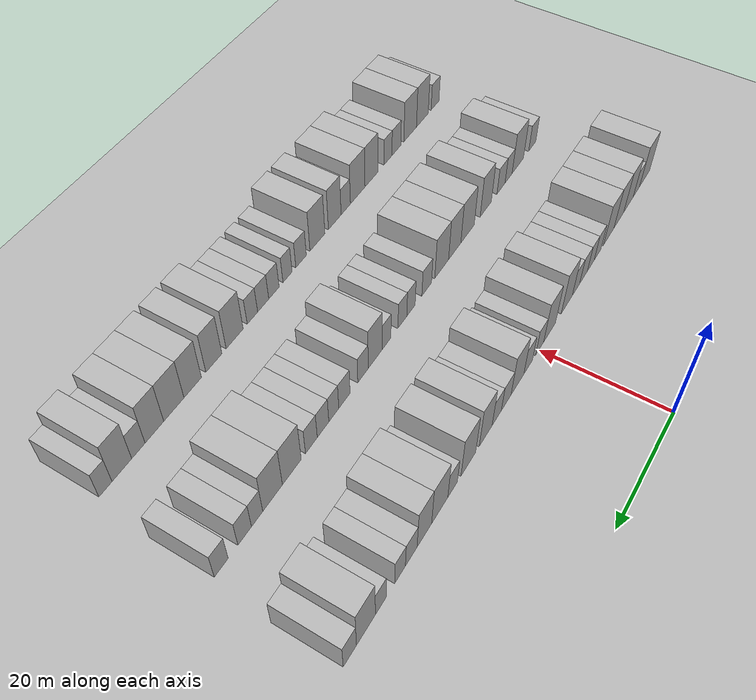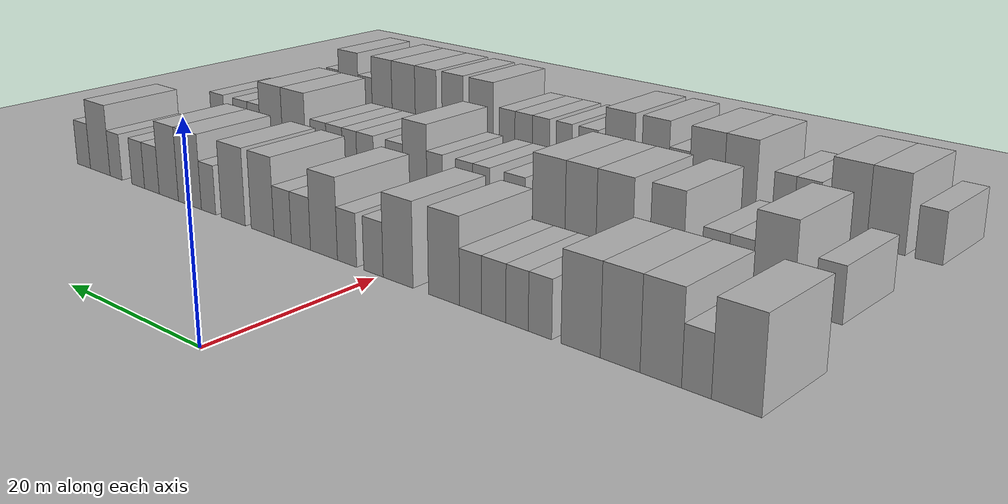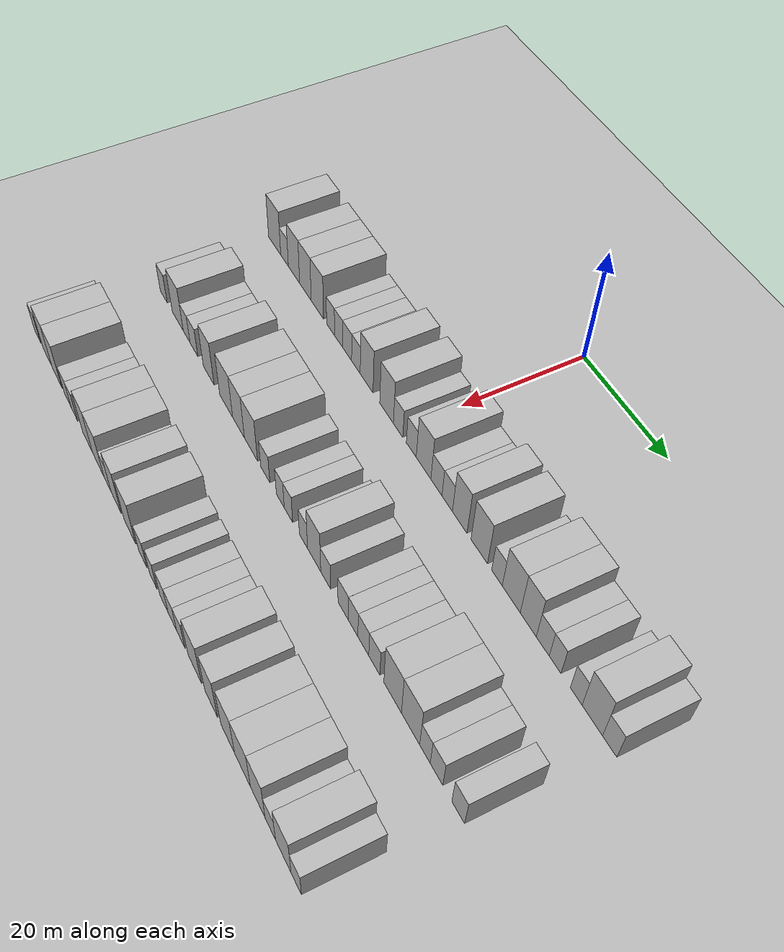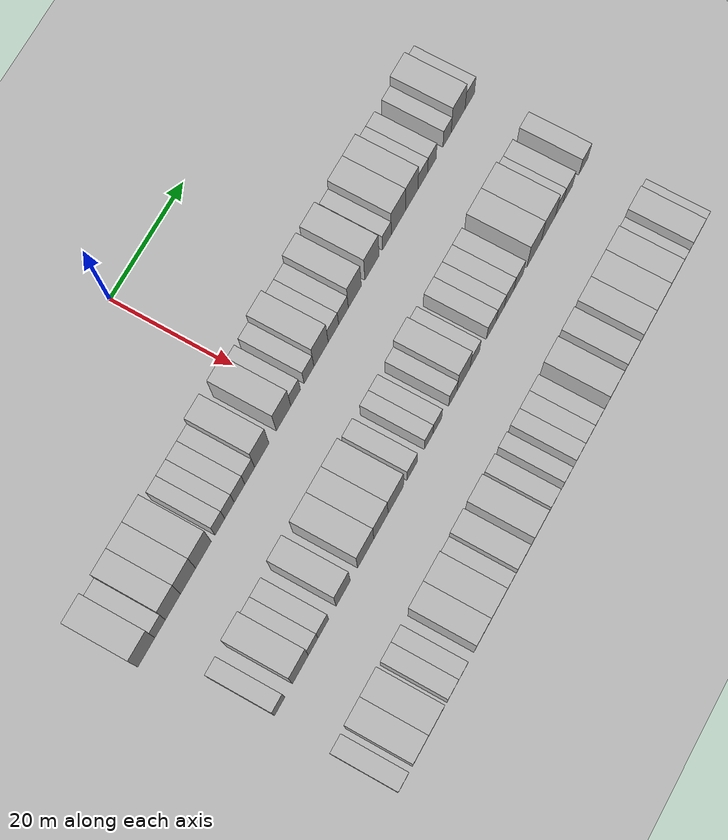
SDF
<sdf version="1.6">
 <world name="default">
  <include><name>ground_plane_1</name><uri>model://HANNAS_ground_plane</uri></include>
  <include>
   <name>ground_plane_2</name>
   <uri>model://HANNAS_ground_plane</uri>
   <pose>100 0 0  0 0 0</pose>
  </include>
  <model name="building_48">
   <static>1</static>
   <pose>25.0000 -39.6788 0 0.000000 0.000000 0.000000</pose>
   <link name="link">
    <pose>0 0 4.50 0 0 0</pose>
    <collision name="collision"><geometry><box><size>10.0000 4.4031 9.0000</size></box></geometry></collision>
    <visual name="visual">
     <cast_shadows>0</cast_shadows>
     <geometry><box><size>10.0000 4.4031 9.0000</size></box></geometry>
     <material>
      <script>
       <uri>model://HANNAS_wall/materials/scripts</uri>
       <uri>model://HANNAS_wall/materials/textures</uri>
       <name>vrc/HANNAS_wall</name>
      </script>
     </material>
    </visual>
   </link>
  </model>
  <model name="building_49">
   <static>1</static>
   <pose>25.0000 -36.1139 0 0.000000 0.000000 0.000000</pose>
   <link name="link">
    <pose>0 0 3.00 0 0 0</pose>
    <collision name="collision"><geometry><box><size>10.0000 2.7268 6.0000</size></box></geometry></collision>
    <visual name="visual">
     <cast_shadows>0</cast_shadows>
     <geometry><box><size>10.0000 2.7268 6.0000</size></box></geometry>
     <material>
      <script>
       <uri>model://HANNAS_wall/materials/scripts</uri>
       <uri>model://HANNAS_wall/materials/textures</uri>
       <name>vrc/HANNAS_wall</name>
      </script>
     </material>
    </visual>
   </link>
  </model>
  <model name="building_50">
   <static>1</static>
   <pose>25.0000 -32.7789 0 0.000000 0.000000 0.000000</pose>
   <link name="link">
    <pose>0 0 4.50 0 0 0</pose>
    <collision name="collision"><geometry><box><size>10.0000 3.9430 9.0000</size></box></geometry></collision>
    <visual name="visual">
     <cast_shadows>0</cast_shadows>
     <geometry><box><size>10.0000 3.9430 9.0000</size></box></geometry>
     <material>
      <script>
       <uri>model://HANNAS_wall/materials/scripts</uri>
       <uri>model://HANNAS_wall/materials/textures</uri>
       <name>vrc/HANNAS_wall</name>
      </script>
     </material>
    </visual>
   </link>
  </model>
  <model name="building_51">
   <static>1</static>
   <pose>25.0000 -28.8293 0 0.000000 0.000000 0.000000</pose>
   <link name="link">
    <pose>0 0 4.50 0 0 0</pose>
    <collision name="collision"><geometry><box><size>10.0000 3.9562 9.0000</size></box></geometry></collision>
    <visual name="visual">
     <cast_shadows>0</cast_shadows>
     <geometry><box><size>10.0000 3.9562 9.0000</size></box></geometry>
     <material>
      <script>
       <uri>model://HANNAS_wall/materials/scripts</uri>
       <uri>model://HANNAS_wall/materials/textures</uri>
       <name>vrc/HANNAS_wall</name>
      </script>
     </material>
    </visual>
   </link>
  </model>
  <model name="building_52">
   <static>1</static>
   <pose>25.0000 -24.7920 0 0.000000 0.000000 0.000000</pose>
   <link name="link">
    <pose>0 0 4.50 0 0 0</pose>
    <collision name="collision"><geometry><box><size>10.0000 4.1183 9.0000</size></box></geometry></collision>
    <visual name="visual">
     <cast_shadows>0</cast_shadows>
     <geometry><box><size>10.0000 4.1183 9.0000</size></box></geometry>
     <material>
      <script>
       <uri>model://HANNAS_wall/materials/scripts</uri>
       <uri>model://HANNAS_wall/materials/textures</uri>
       <name>vrc/HANNAS_wall</name>
      </script>
     </material>
    </visual>
   </link>
  </model>
  <model name="building_53">
   <static>1</static>
   <pose>25.0000 -20.4421 0 0.000000 0.000000 0.000000</pose>
   <link name="link">
    <pose>0 0 3.00 0 0 0</pose>
    <collision name="collision"><geometry><box><size>10.0000 2.5815 6.0000</size></box></geometry></collision>
    <visual name="visual">
     <cast_shadows>0</cast_shadows>
     <geometry><box><size>10.0000 2.5815 6.0000</size></box></geometry>
     <material>
      <script>
       <uri>model://HANNAS_wall/materials/scripts</uri>
       <uri>model://HANNAS_wall/materials/textures</uri>
       <name>vrc/HANNAS_wall</name>
      </script>
     </material>
    </visual>
   </link>
  </model>
  <model name="building_54">
   <static>1</static>
   <pose>25.0000 -17.8780 0 0.000000 0.000000 0.000000</pose>
   <link name="link">
    <pose>0 0 3.00 0 0 0</pose>
    <collision name="collision"><geometry><box><size>10.0000 2.5468 6.0000</size></box></geometry></collision>
    <visual name="visual">
     <cast_shadows>0</cast_shadows>
     <geometry><box><size>10.0000 2.5468 6.0000</size></box></geometry>
     <material>
      <script>
       <uri>model://HANNAS_wall/materials/scripts</uri>
       <uri>model://HANNAS_wall/materials/textures</uri>
       <name>vrc/HANNAS_wall</name>
      </script>
     </material>
    </visual>
   </link>
  </model>
  <model name="building_55">
   <static>1</static>
   <pose>25.0000 -15.1746 0 0.000000 0.000000 0.000000</pose>
   <link name="link">
    <pose>0 0 3.00 0 0 0</pose>
    <collision name="collision"><geometry><box><size>10.0000 2.8601 6.0000</size></box></geometry></collision>
    <visual name="visual">
     <cast_shadows>0</cast_shadows>
     <geometry><box><size>10.0000 2.8601 6.0000</size></box></geometry>
     <material>
      <script>
       <uri>model://HANNAS_wall/materials/scripts</uri>
       <uri>model://HANNAS_wall/materials/textures</uri>
       <name>vrc/HANNAS_wall</name>
      </script>
     </material>
    </visual>
   </link>
  </model>
  <model name="building_56">
   <static>1</static>
   <pose>25.0000 -12.4205 0 0.000000 0.000000 0.000000</pose>
   <link name="link">
    <pose>0 0 3.00 0 0 0</pose>
    <collision name="collision"><geometry><box><size>10.0000 2.6481 6.0000</size></box></geometry></collision>
    <visual name="visual">
     <cast_shadows>0</cast_shadows>
     <geometry><box><size>10.0000 2.6481 6.0000</size></box></geometry>
     <material>
      <script>
       <uri>model://HANNAS_wall/materials/scripts</uri>
       <uri>model://HANNAS_wall/materials/textures</uri>
       <name>vrc/HANNAS_wall</name>
      </script>
     </material>
    </visual>
   </link>
  </model>
  <model name="building_57">
   <static>1</static>
   <pose>25.0000 -9.1543 0 0.000000 0.000000 0.000000</pose>
   <link name="link">
    <pose>0 0 4.50 0 0 0</pose>
    <collision name="collision"><geometry><box><size>10.0000 3.8844 9.0000</size></box></geometry></collision>
    <visual name="visual">
     <cast_shadows>0</cast_shadows>
     <geometry><box><size>10.0000 3.8844 9.0000</size></box></geometry>
     <material>
      <script>
       <uri>model://HANNAS_wall/materials/scripts</uri>
       <uri>model://HANNAS_wall/materials/textures</uri>
       <name>vrc/HANNAS_wall</name>
      </script>
     </material>
    </visual>
   </link>
  </model>
  <model name="building_58">
   <static>1</static>
   <pose>25.0000 -3.2167 0 0.000000 0.000000 0.000000</pose>
   <link name="link">
    <pose>0 0 4.50 0 0 0</pose>
    <collision name="collision"><geometry><box><size>10.0000 3.9907 9.0000</size></box></geometry></collision>
    <visual name="visual">
     <cast_shadows>0</cast_shadows>
     <geometry><box><size>10.0000 3.9907 9.0000</size></box></geometry>
     <material>
      <script>
       <uri>model://HANNAS_wall/materials/scripts</uri>
       <uri>model://HANNAS_wall/materials/textures</uri>
       <name>vrc/HANNAS_wall</name>
      </script>
     </material>
    </visual>
   </link>
  </model>
  <model name="building_59">
   <static>1</static>
   <pose>25.0000 0.1174 0 0.000000 0.000000 0.000000</pose>
   <link name="link">
    <pose>0 0 3.00 0 0 0</pose>
    <collision name="collision"><geometry><box><size>10.0000 2.6775 6.0000</size></box></geometry></collision>
    <visual name="visual">
     <cast_shadows>0</cast_shadows>
     <geometry><box><size>10.0000 2.6775 6.0000</size></box></geometry>
     <material>
      <script>
       <uri>model://HANNAS_wall/materials/scripts</uri>
       <uri>model://HANNAS_wall/materials/textures</uri>
       <name>vrc/HANNAS_wall</name>
      </script>
     </material>
    </visual>
   </link>
  </model>
  <model name="building_60">
   <static>1</static>
   <pose>25.0000 3.8342 0 0.000000 0.000000 0.000000</pose>
   <link name="link">
    <pose>0 0 3.00 0 0 0</pose>
    <collision name="collision"><geometry><box><size>10.0000 2.7561 6.0000</size></box></geometry></collision>
    <visual name="visual">
     <cast_shadows>0</cast_shadows>
     <geometry><box><size>10.0000 2.7561 6.0000</size></box></geometry>
     <material>
      <script>
       <uri>model://HANNAS_wall/materials/scripts</uri>
       <uri>model://HANNAS_wall/materials/textures</uri>
       <name>vrc/HANNAS_wall</name>
      </script>
     </material>
    </visual>
   </link>
  </model>
  <model name="building_61">
   <static>1</static>
   <pose>25.0000 7.2117 0 0.000000 0.000000 0.000000</pose>
   <link name="link">
    <pose>0 0 4.50 0 0 0</pose>
    <collision name="collision"><geometry><box><size>10.0000 3.9989 9.0000</size></box></geometry></collision>
    <visual name="visual">
     <cast_shadows>0</cast_shadows>
     <geometry><box><size>10.0000 3.9989 9.0000</size></box></geometry>
     <material>
      <script>
       <uri>model://HANNAS_wall/materials/scripts</uri>
       <uri>model://HANNAS_wall/materials/textures</uri>
       <name>vrc/HANNAS_wall</name>
      </script>
     </material>
    </visual>
   </link>
  </model>
  <model name="building_62">
   <static>1</static>
   <pose>25.0000 10.6851 0 0.000000 0.000000 0.000000</pose>
   <link name="link">
    <pose>0 0 3.00 0 0 0</pose>
    <collision name="collision"><geometry><box><size>10.0000 2.9478 6.0000</size></box></geometry></collision>
    <visual name="visual">
     <cast_shadows>0</cast_shadows>
     <geometry><box><size>10.0000 2.9478 6.0000</size></box></geometry>
     <material>
      <script>
       <uri>model://HANNAS_wall/materials/scripts</uri>
       <uri>model://HANNAS_wall/materials/textures</uri>
       <name>vrc/HANNAS_wall</name>
      </script>
     </material>
    </visual>
   </link>
  </model>
  <model name="building_63">
   <static>1</static>
   <pose>25.0000 13.5272 0 0.000000 0.000000 0.000000</pose>
   <link name="link">
    <pose>0 0 3.00 0 0 0</pose>
    <collision name="collision"><geometry><box><size>10.0000 2.7364 6.0000</size></box></geometry></collision>
    <visual name="visual">
     <cast_shadows>0</cast_shadows>
     <geometry><box><size>10.0000 2.7364 6.0000</size></box></geometry>
     <material>
      <script>
       <uri>model://HANNAS_wall/materials/scripts</uri>
       <uri>model://HANNAS_wall/materials/textures</uri>
       <name>vrc/HANNAS_wall</name>
      </script>
     </material>
    </visual>
   </link>
  </model>
  <model name="building_64">
   <static>1</static>
   <pose>25.0000 16.7561 0 0.000000 0.000000 0.000000</pose>
   <link name="link">
    <pose>0 0 4.50 0 0 0</pose>
    <collision name="collision"><geometry><box><size>10.0000 3.7214 9.0000</size></box></geometry></collision>
    <visual name="visual">
     <cast_shadows>0</cast_shadows>
     <geometry><box><size>10.0000 3.7214 9.0000</size></box></geometry>
     <material>
      <script>
       <uri>model://HANNAS_wall/materials/scripts</uri>
       <uri>model://HANNAS_wall/materials/textures</uri>
       <name>vrc/HANNAS_wall</name>
      </script>
     </material>
    </visual>
   </link>
  </model>
  <model name="building_65">
   <static>1</static>
   <pose>25.0000 21.6543 0 0.000000 0.000000 0.000000</pose>
   <link name="link">
    <pose>0 0 4.50 0 0 0</pose>
    <collision name="collision"><geometry><box><size>10.0000 4.0751 9.0000</size></box></geometry></collision>
    <visual name="visual">
     <cast_shadows>0</cast_shadows>
     <geometry><box><size>10.0000 4.0751 9.0000</size></box></geometry>
     <material>
      <script>
       <uri>model://HANNAS_wall/materials/scripts</uri>
       <uri>model://HANNAS_wall/materials/textures</uri>
       <name>vrc/HANNAS_wall</name>
      </script>
     </material>
    </visual>
   </link>
  </model>
  <model name="building_66">
   <static>1</static>
   <pose>25.0000 25.9667 0 0.000000 0.000000 0.000000</pose>
   <link name="link">
    <pose>0 0 3.00 0 0 0</pose>
    <collision name="collision"><geometry><box><size>10.0000 2.5496 6.0000</size></box></geometry></collision>
    <visual name="visual">
     <cast_shadows>0</cast_shadows>
     <geometry><box><size>10.0000 2.5496 6.0000</size></box></geometry>
     <material>
      <script>
       <uri>model://HANNAS_wall/materials/scripts</uri>
       <uri>model://HANNAS_wall/materials/textures</uri>
       <name>vrc/HANNAS_wall</name>
      </script>
     </material>
    </visual>
   </link>
  </model>
  <model name="building_67">
   <static>1</static>
   <pose>25.0000 29.3465 0 0.000000 0.000000 0.000000</pose>
   <link name="link">
    <pose>0 0 4.50 0 0 0</pose>
    <collision name="collision"><geometry><box><size>10.0000 4.2099 9.0000</size></box></geometry></collision>
    <visual name="visual">
     <cast_shadows>0</cast_shadows>
     <geometry><box><size>10.0000 4.2099 9.0000</size></box></geometry>
     <material>
      <script>
       <uri>model://HANNAS_wall/materials/scripts</uri>
       <uri>model://HANNAS_wall/materials/textures</uri>
       <name>vrc/HANNAS_wall</name>
      </script>
     </material>
    </visual>
   </link>
  </model>
  <model name="building_68">
   <static>1</static>
   <pose>25.0000 33.2782 0 0.000000 0.000000 0.000000</pose>
   <link name="link">
    <pose>0 0 4.50 0 0 0</pose>
    <collision name="collision"><geometry><box><size>10.0000 3.6535 9.0000</size></box></geometry></collision>
    <visual name="visual">
     <cast_shadows>0</cast_shadows>
     <geometry><box><size>10.0000 3.6535 9.0000</size></box></geometry>
     <material>
      <script>
       <uri>model://HANNAS_wall/materials/scripts</uri>
       <uri>model://HANNAS_wall/materials/textures</uri>
       <name>vrc/HANNAS_wall</name>
      </script>
     </material>
    </visual>
   </link>
  </model>
  <model name="building_69">
   <static>1</static>
   <pose>25.0000 36.5335 0 0.000000 0.000000 0.000000</pose>
   <link name="link">
    <pose>0 0 3.00 0 0 0</pose>
    <collision name="collision"><geometry><box><size>10.0000 2.8572 6.0000</size></box></geometry></collision>
    <visual name="visual">
     <cast_shadows>0</cast_shadows>
     <geometry><box><size>10.0000 2.8572 6.0000</size></box></geometry>
     <material>
      <script>
       <uri>model://HANNAS_wall/materials/scripts</uri>
       <uri>model://HANNAS_wall/materials/textures</uri>
       <name>vrc/HANNAS_wall</name>
      </script>
     </material>
    </visual>
   </link>
  </model>
  <model name="building_70">
   <static>1</static>
   <pose>25.0000 39.2379 0 0.000000 0.000000 0.000000</pose>
   <link name="link">
    <pose>0 0 3.00 0 0 0</pose>
    <collision name="collision"><geometry><box><size>10.0000 2.5515 6.0000</size></box></geometry></collision>
    <visual name="visual">
     <cast_shadows>0</cast_shadows>
     <geometry><box><size>10.0000 2.5515 6.0000</size></box></geometry>
     <material>
      <script>
       <uri>model://HANNAS_wall/materials/scripts</uri>
       <uri>model://HANNAS_wall/materials/textures</uri>
       <name>vrc/HANNAS_wall</name>
      </script>
     </material>
    </visual>
   </link>
  </model>
  <model name="building_71">
   <static>1</static>
   <pose>25.0000 43.7541 0 0.000000 0.000000 0.000000</pose>
   <link name="link">
    <pose>0 0 3.00 0 0 0</pose>
    <collision name="collision"><geometry><box><size>10.0000 2.4808 6.0000</size></box></geometry></collision>
    <visual name="visual">
     <cast_shadows>0</cast_shadows>
     <geometry><box><size>10.0000 2.4808 6.0000</size></box></geometry>
     <material>
      <script>
       <uri>model://HANNAS_wall/materials/scripts</uri>
       <uri>model://HANNAS_wall/materials/textures</uri>
       <name>vrc/HANNAS_wall</name>
      </script>
     </material>
    </visual>
   </link>
  </model>
  <model name="building_72">
   <static>1</static>
   <pose>25.0000 47.0909 0 0.000000 0.000000 0.000000</pose>
   <link name="link">
    <pose>0 0 4.50 0 0 0</pose>
    <collision name="collision"><geometry><box><size>10.0000 4.1929 9.0000</size></box></geometry></collision>
    <visual name="visual">
     <cast_shadows>0</cast_shadows>
     <geometry><box><size>10.0000 4.1929 9.0000</size></box></geometry>
     <material>
      <script>
       <uri>model://HANNAS_wall/materials/scripts</uri>
       <uri>model://HANNAS_wall/materials/textures</uri>
       <name>vrc/HANNAS_wall</name>
      </script>
     </material>
    </visual>
   </link>
  </model>
  <model name="building_73">
   <static>1</static>
   <pose>25.0000 50.6157 0 0.000000 0.000000 0.000000</pose>
   <link name="link">
    <pose>0 0 3.00 0 0 0</pose>
    <collision name="collision"><geometry><box><size>10.0000 2.8567 6.0000</size></box></geometry></collision>
    <visual name="visual">
     <cast_shadows>0</cast_shadows>
     <geometry><box><size>10.0000 2.8567 6.0000</size></box></geometry>
     <material>
      <script>
       <uri>model://HANNAS_wall/materials/scripts</uri>
       <uri>model://HANNAS_wall/materials/textures</uri>
       <name>vrc/HANNAS_wall</name>
      </script>
     </material>
    </visual>
   </link>
  </model>
  <model name="building_176">
   <static>1</static>
   <pose>44.0000 -37.2297 0 0.000000 0.000000 0.000000</pose>
   <link name="link">
    <pose>0 0 3.00 0 0 0</pose>
    <collision name="collision"><geometry><box><size>10.0000 2.7300 6.0000</size></box></geometry></collision>
    <visual name="visual">
     <cast_shadows>0</cast_shadows>
     <geometry><box><size>10.0000 2.7300 6.0000</size></box></geometry>
     <material>
      <script>
       <uri>model://HANNAS_wall/materials/scripts</uri>
       <uri>model://HANNAS_wall/materials/textures</uri>
       <name>vrc/HANNAS_wall</name>
      </script>
     </material>
    </visual>
   </link>
  </model>
  <model name="building_177">
   <static>1</static>
   <pose>44.0000 -31.7419 0 0.000000 0.000000 0.000000</pose>
   <link name="link">
    <pose>0 0 4.50 0 0 0</pose>
    <collision name="collision"><geometry><box><size>10.0000 4.2457 9.0000</size></box></geometry></collision>
    <visual name="visual">
     <cast_shadows>0</cast_shadows>
     <geometry><box><size>10.0000 4.2457 9.0000</size></box></geometry>
     <material>
      <script>
       <uri>model://HANNAS_wall/materials/scripts</uri>
       <uri>model://HANNAS_wall/materials/textures</uri>
       <name>vrc/HANNAS_wall</name>
      </script>
     </material>
    </visual>
   </link>
  </model>
  <model name="building_178">
   <static>1</static>
   <pose>44.0000 -28.3332 0 0.000000 0.000000 0.000000</pose>
   <link name="link">
    <pose>0 0 3.00 0 0 0</pose>
    <collision name="collision"><geometry><box><size>10.0000 2.5717 6.0000</size></box></geometry></collision>
    <visual name="visual">
     <cast_shadows>0</cast_shadows>
     <geometry><box><size>10.0000 2.5717 6.0000</size></box></geometry>
     <material>
      <script>
       <uri>model://HANNAS_wall/materials/scripts</uri>
       <uri>model://HANNAS_wall/materials/textures</uri>
       <name>vrc/HANNAS_wall</name>
      </script>
     </material>
    </visual>
   </link>
  </model>
  <model name="building_179">
   <static>1</static>
   <pose>44.0000 -25.6053 0 0.000000 0.000000 0.000000</pose>
   <link name="link">
    <pose>0 0 3.00 0 0 0</pose>
    <collision name="collision"><geometry><box><size>10.0000 2.8840 6.0000</size></box></geometry></collision>
    <visual name="visual">
     <cast_shadows>0</cast_shadows>
     <geometry><box><size>10.0000 2.8840 6.0000</size></box></geometry>
     <material>
      <script>
       <uri>model://HANNAS_wall/materials/scripts</uri>
       <uri>model://HANNAS_wall/materials/textures</uri>
       <name>vrc/HANNAS_wall</name>
      </script>
     </material>
    </visual>
   </link>
  </model>
  <model name="building_180">
   <static>1</static>
   <pose>44.0000 -20.2363 0 0.000000 0.000000 0.000000</pose>
   <link name="link">
    <pose>0 0 4.50 0 0 0</pose>
    <collision name="collision"><geometry><box><size>10.0000 3.8541 9.0000</size></box></geometry></collision>
    <visual name="visual">
     <cast_shadows>0</cast_shadows>
     <geometry><box><size>10.0000 3.8541 9.0000</size></box></geometry>
     <material>
      <script>
       <uri>model://HANNAS_wall/materials/scripts</uri>
       <uri>model://HANNAS_wall/materials/textures</uri>
       <name>vrc/HANNAS_wall</name>
      </script>
     </material>
    </visual>
   </link>
  </model>
  <model name="building_181">
   <static>1</static>
   <pose>44.0000 -14.0857 0 0.000000 0.000000 0.000000</pose>
   <link name="link">
    <pose>0 0 4.50 0 0 0</pose>
    <collision name="collision"><geometry><box><size>10.0000 4.4470 9.0000</size></box></geometry></collision>
    <visual name="visual">
     <cast_shadows>0</cast_shadows>
     <geometry><box><size>10.0000 4.4470 9.0000</size></box></geometry>
     <material>
      <script>
       <uri>model://HANNAS_wall/materials/scripts</uri>
       <uri>model://HANNAS_wall/materials/textures</uri>
       <name>vrc/HANNAS_wall</name>
      </script>
     </material>
    </visual>
   </link>
  </model>
  <model name="building_182">
   <static>1</static>
   <pose>44.0000 -9.8915 0 0.000000 0.000000 0.000000</pose>
   <link name="link">
    <pose>0 0 4.50 0 0 0</pose>
    <collision name="collision"><geometry><box><size>10.0000 3.9415 9.0000</size></box></geometry></collision>
    <visual name="visual">
     <cast_shadows>0</cast_shadows>
     <geometry><box><size>10.0000 3.9415 9.0000</size></box></geometry>
     <material>
      <script>
       <uri>model://HANNAS_wall/materials/scripts</uri>
       <uri>model://HANNAS_wall/materials/textures</uri>
       <name>vrc/HANNAS_wall</name>
      </script>
     </material>
    </visual>
   </link>
  </model>
  <model name="building_183">
   <static>1</static>
   <pose>44.0000 -5.7618 0 0.000000 0.000000 0.000000</pose>
   <link name="link">
    <pose>0 0 4.50 0 0 0</pose>
    <collision name="collision"><geometry><box><size>10.0000 4.3179 9.0000</size></box></geometry></collision>
    <visual name="visual">
     <cast_shadows>0</cast_shadows>
     <geometry><box><size>10.0000 4.3179 9.0000</size></box></geometry>
     <material>
      <script>
       <uri>model://HANNAS_wall/materials/scripts</uri>
       <uri>model://HANNAS_wall/materials/textures</uri>
       <name>vrc/HANNAS_wall</name>
      </script>
     </material>
    </visual>
   </link>
  </model>
  <model name="building_184">
   <static>1</static>
   <pose>44.0000 -1.1455 0 0.000000 0.000000 0.000000</pose>
   <link name="link">
    <pose>0 0 3.00 0 0 0</pose>
    <collision name="collision"><geometry><box><size>10.0000 2.9148 6.0000</size></box></geometry></collision>
    <visual name="visual">
     <cast_shadows>0</cast_shadows>
     <geometry><box><size>10.0000 2.9148 6.0000</size></box></geometry>
     <material>
      <script>
       <uri>model://HANNAS_wall/materials/scripts</uri>
       <uri>model://HANNAS_wall/materials/textures</uri>
       <name>vrc/HANNAS_wall</name>
      </script>
     </material>
    </visual>
   </link>
  </model>
  <model name="building_185">
   <static>1</static>
   <pose>44.0000 3.5289 0 0.000000 0.000000 0.000000</pose>
   <link name="link">
    <pose>0 0 3.00 0 0 0</pose>
    <collision name="collision"><geometry><box><size>10.0000 2.4338 6.0000</size></box></geometry></collision>
    <visual name="visual">
     <cast_shadows>0</cast_shadows>
     <geometry><box><size>10.0000 2.4338 6.0000</size></box></geometry>
     <material>
      <script>
       <uri>model://HANNAS_wall/materials/scripts</uri>
       <uri>model://HANNAS_wall/materials/textures</uri>
       <name>vrc/HANNAS_wall</name>
      </script>
     </material>
    </visual>
   </link>
  </model>
  <model name="building_186">
   <static>1</static>
   <pose>44.0000 6.0107 0 0.000000 0.000000 0.000000</pose>
   <link name="link">
    <pose>0 0 3.00 0 0 0</pose>
    <collision name="collision"><geometry><box><size>10.0000 2.5299 6.0000</size></box></geometry></collision>
    <visual name="visual">
     <cast_shadows>0</cast_shadows>
     <geometry><box><size>10.0000 2.5299 6.0000</size></box></geometry>
     <material>
      <script>
       <uri>model://HANNAS_wall/materials/scripts</uri>
       <uri>model://HANNAS_wall/materials/textures</uri>
       <name>vrc/HANNAS_wall</name>
      </script>
     </material>
    </visual>
   </link>
  </model>
  <model name="building_187">
   <static>1</static>
   <pose>44.0000 10.4759 0 0.000000 0.000000 0.000000</pose>
   <link name="link">
    <pose>0 0 3.00 0 0 0</pose>
    <collision name="collision"><geometry><box><size>10.0000 2.4005 6.0000</size></box></geometry></collision>
    <visual name="visual">
     <cast_shadows>0</cast_shadows>
     <geometry><box><size>10.0000 2.4005 6.0000</size></box></geometry>
     <material>
      <script>
       <uri>model://HANNAS_wall/materials/scripts</uri>
       <uri>model://HANNAS_wall/materials/textures</uri>
       <name>vrc/HANNAS_wall</name>
      </script>
     </material>
    </visual>
   </link>
  </model>
  <model name="building_188">
   <static>1</static>
   <pose>44.0000 13.5667 0 0.000000 0.000000 0.000000</pose>
   <link name="link">
    <pose>0 0 4.50 0 0 0</pose>
    <collision name="collision"><geometry><box><size>10.0000 3.7810 9.0000</size></box></geometry></collision>
    <visual name="visual">
     <cast_shadows>0</cast_shadows>
     <geometry><box><size>10.0000 3.7810 9.0000</size></box></geometry>
     <material>
      <script>
       <uri>model://HANNAS_wall/materials/scripts</uri>
       <uri>model://HANNAS_wall/materials/textures</uri>
       <name>vrc/HANNAS_wall</name>
      </script>
     </material>
    </visual>
   </link>
  </model>
  <model name="building_189">
   <static>1</static>
   <pose>44.0000 16.8471 0 0.000000 0.000000 0.000000</pose>
   <link name="link">
    <pose>0 0 3.00 0 0 0</pose>
    <collision name="collision"><geometry><box><size>10.0000 2.7799 6.0000</size></box></geometry></collision>
    <visual name="visual">
     <cast_shadows>0</cast_shadows>
     <geometry><box><size>10.0000 2.7799 6.0000</size></box></geometry>
     <material>
      <script>
       <uri>model://HANNAS_wall/materials/scripts</uri>
       <uri>model://HANNAS_wall/materials/textures</uri>
       <name>vrc/HANNAS_wall</name>
      </script>
     </material>
    </visual>
   </link>
  </model>
  <model name="building_190">
   <static>1</static>
   <pose>44.0000 21.6709 0 0.000000 0.000000 0.000000</pose>
   <link name="link">
    <pose>0 0 3.00 0 0 0</pose>
    <collision name="collision"><geometry><box><size>10.0000 2.8677 6.0000</size></box></geometry></collision>
    <visual name="visual">
     <cast_shadows>0</cast_shadows>
     <geometry><box><size>10.0000 2.8677 6.0000</size></box></geometry>
     <material>
      <script>
       <uri>model://HANNAS_wall/materials/scripts</uri>
       <uri>model://HANNAS_wall/materials/textures</uri>
       <name>vrc/HANNAS_wall</name>
      </script>
     </material>
    </visual>
   </link>
  </model>
  <model name="building_191">
   <static>1</static>
   <pose>44.0000 24.3430 0 0.000000 0.000000 0.000000</pose>
   <link name="link">
    <pose>0 0 3.00 0 0 0</pose>
    <collision name="collision"><geometry><box><size>10.0000 2.4764 6.0000</size></box></geometry></collision>
    <visual name="visual">
     <cast_shadows>0</cast_shadows>
     <geometry><box><size>10.0000 2.4764 6.0000</size></box></geometry>
     <material>
      <script>
       <uri>model://HANNAS_wall/materials/scripts</uri>
       <uri>model://HANNAS_wall/materials/textures</uri>
       <name>vrc/HANNAS_wall</name>
      </script>
     </material>
    </visual>
   </link>
  </model>
  <model name="building_192">
   <static>1</static>
   <pose>44.0000 26.9928 0 0.000000 0.000000 0.000000</pose>
   <link name="link">
    <pose>0 0 3.00 0 0 0</pose>
    <collision name="collision"><geometry><box><size>10.0000 2.8232 6.0000</size></box></geometry></collision>
    <visual name="visual">
     <cast_shadows>0</cast_shadows>
     <geometry><box><size>10.0000 2.8232 6.0000</size></box></geometry>
     <material>
      <script>
       <uri>model://HANNAS_wall/materials/scripts</uri>
       <uri>model://HANNAS_wall/materials/textures</uri>
       <name>vrc/HANNAS_wall</name>
      </script>
     </material>
    </visual>
   </link>
  </model>
  <model name="building_193">
   <static>1</static>
   <pose>44.0000 29.8104 0 0.000000 0.000000 0.000000</pose>
   <link name="link">
    <pose>0 0 3.00 0 0 0</pose>
    <collision name="collision"><geometry><box><size>10.0000 2.8121 6.0000</size></box></geometry></collision>
    <visual name="visual">
     <cast_shadows>0</cast_shadows>
     <geometry><box><size>10.0000 2.8121 6.0000</size></box></geometry>
     <material>
      <script>
       <uri>model://HANNAS_wall/materials/scripts</uri>
       <uri>model://HANNAS_wall/materials/textures</uri>
       <name>vrc/HANNAS_wall</name>
      </script>
     </material>
    </visual>
   </link>
  </model>
  <model name="building_194">
   <static>1</static>
   <pose>44.0000 34.3786 0 0.000000 0.000000 0.000000</pose>
   <link name="link">
    <pose>0 0 4.50 0 0 0</pose>
    <collision name="collision"><geometry><box><size>10.0000 4.3242 9.0000</size></box></geometry></collision>
    <visual name="visual">
     <cast_shadows>0</cast_shadows>
     <geometry><box><size>10.0000 4.3242 9.0000</size></box></geometry>
     <material>
      <script>
       <uri>model://HANNAS_wall/materials/scripts</uri>
       <uri>model://HANNAS_wall/materials/textures</uri>
       <name>vrc/HANNAS_wall</name>
      </script>
     </material>
    </visual>
   </link>
  </model>
  <model name="building_195">
   <static>1</static>
   <pose>44.0000 38.7166 0 0.000000 0.000000 0.000000</pose>
   <link name="link">
    <pose>0 0 4.50 0 0 0</pose>
    <collision name="collision"><geometry><box><size>10.0000 4.3518 9.0000</size></box></geometry></collision>
    <visual name="visual">
     <cast_shadows>0</cast_shadows>
     <geometry><box><size>10.0000 4.3518 9.0000</size></box></geometry>
     <material>
      <script>
       <uri>model://HANNAS_wall/materials/scripts</uri>
       <uri>model://HANNAS_wall/materials/textures</uri>
       <name>vrc/HANNAS_wall</name>
      </script>
     </material>
    </visual>
   </link>
  </model>
  <model name="building_196">
   <static>1</static>
   <pose>44.0000 42.1091 0 0.000000 0.000000 0.000000</pose>
   <link name="link">
    <pose>0 0 3.00 0 0 0</pose>
    <collision name="collision"><geometry><box><size>10.0000 2.4332 6.0000</size></box></geometry></collision>
    <visual name="visual">
     <cast_shadows>0</cast_shadows>
     <geometry><box><size>10.0000 2.4332 6.0000</size></box></geometry>
     <material>
      <script>
       <uri>model://HANNAS_wall/materials/scripts</uri>
       <uri>model://HANNAS_wall/materials/textures</uri>
       <name>vrc/HANNAS_wall</name>
      </script>
     </material>
    </visual>
   </link>
  </model>
  <model name="building_197">
   <static>1</static>
   <pose>44.0000 44.7554 0 0.000000 0.000000 0.000000</pose>
   <link name="link">
    <pose>0 0 3.00 0 0 0</pose>
    <collision name="collision"><geometry><box><size>10.0000 2.8595 6.0000</size></box></geometry></collision>
    <visual name="visual">
     <cast_shadows>0</cast_shadows>
     <geometry><box><size>10.0000 2.8595 6.0000</size></box></geometry>
     <material>
      <script>
       <uri>model://HANNAS_wall/materials/scripts</uri>
       <uri>model://HANNAS_wall/materials/textures</uri>
       <name>vrc/HANNAS_wall</name>
      </script>
     </material>
    </visual>
   </link>
  </model>
  <model name="building_198">
   <static>1</static>
   <pose>44.0000 49.5875 0 0.000000 0.000000 0.000000</pose>
   <link name="link">
    <pose>0 0 3.00 0 0 0</pose>
    <collision name="collision"><geometry><box><size>10.0000 2.8046 6.0000</size></box></geometry></collision>
    <visual name="visual">
     <cast_shadows>0</cast_shadows>
     <geometry><box><size>10.0000 2.8046 6.0000</size></box></geometry>
     <material>
      <script>
       <uri>model://HANNAS_wall/materials/scripts</uri>
       <uri>model://HANNAS_wall/materials/textures</uri>
       <name>vrc/HANNAS_wall</name>
      </script>
     </material>
    </visual>
   </link>
  </model>
  <model name="building_295">
   <static>1</static>
   <pose>63.0000 -37.9413 0 0.000000 0.000000 0.000000</pose>
   <link name="link">
    <pose>0 0 3.00 0 0 0</pose>
    <collision name="collision"><geometry><box><size>10.0000 2.8241 6.0000</size></box></geometry></collision>
    <visual name="visual">
     <cast_shadows>0</cast_shadows>
     <geometry><box><size>10.0000 2.8241 6.0000</size></box></geometry>
     <material>
      <script>
       <uri>model://HANNAS_wall/materials/scripts</uri>
       <uri>model://HANNAS_wall/materials/textures</uri>
       <name>vrc/HANNAS_wall</name>
      </script>
     </material>
    </visual>
   </link>
  </model>
  <model name="building_296">
   <static>1</static>
   <pose>63.0000 -33.4798 0 0.000000 0.000000 0.000000</pose>
   <link name="link">
    <pose>0 0 4.50 0 0 0</pose>
    <collision name="collision"><geometry><box><size>10.0000 4.0990 9.0000</size></box></geometry></collision>
    <visual name="visual">
     <cast_shadows>0</cast_shadows>
     <geometry><box><size>10.0000 4.0990 9.0000</size></box></geometry>
     <material>
      <script>
       <uri>model://HANNAS_wall/materials/scripts</uri>
       <uri>model://HANNAS_wall/materials/textures</uri>
       <name>vrc/HANNAS_wall</name>
      </script>
     </material>
    </visual>
   </link>
  </model>
  <model name="building_297">
   <static>1</static>
   <pose>63.0000 -29.2855 0 0.000000 0.000000 0.000000</pose>
   <link name="link">
    <pose>0 0 4.50 0 0 0</pose>
    <collision name="collision"><geometry><box><size>10.0000 4.2895 9.0000</size></box></geometry></collision>
    <visual name="visual">
     <cast_shadows>0</cast_shadows>
     <geometry><box><size>10.0000 4.2895 9.0000</size></box></geometry>
     <material>
      <script>
       <uri>model://HANNAS_wall/materials/scripts</uri>
       <uri>model://HANNAS_wall/materials/textures</uri>
       <name>vrc/HANNAS_wall</name>
      </script>
     </material>
    </visual>
   </link>
  </model>
  <model name="building_298">
   <static>1</static>
   <pose>63.0000 -24.6817 0 0.000000 0.000000 0.000000</pose>
   <link name="link">
    <pose>0 0 3.00 0 0 0</pose>
    <collision name="collision"><geometry><box><size>10.0000 2.9181 6.0000</size></box></geometry></collision>
    <visual name="visual">
     <cast_shadows>0</cast_shadows>
     <geometry><box><size>10.0000 2.9181 6.0000</size></box></geometry>
     <material>
      <script>
       <uri>model://HANNAS_wall/materials/scripts</uri>
       <uri>model://HANNAS_wall/materials/textures</uri>
       <name>vrc/HANNAS_wall</name>
      </script>
     </material>
    </visual>
   </link>
  </model>
  <model name="building_299">
   <static>1</static>
   <pose>63.0000 -21.9402 0 0.000000 0.000000 0.000000</pose>
   <link name="link">
    <pose>0 0 3.00 0 0 0</pose>
    <collision name="collision"><geometry><box><size>10.0000 2.5650 6.0000</size></box></geometry></collision>
    <visual name="visual">
     <cast_shadows>0</cast_shadows>
     <geometry><box><size>10.0000 2.5650 6.0000</size></box></geometry>
     <material>
      <script>
       <uri>model://HANNAS_wall/materials/scripts</uri>
       <uri>model://HANNAS_wall/materials/textures</uri>
       <name>vrc/HANNAS_wall</name>
      </script>
     </material>
    </visual>
   </link>
  </model>
  <model name="building_300">
   <static>1</static>
   <pose>63.0000 -16.6479 0 0.000000 0.000000 0.000000</pose>
   <link name="link">
    <pose>0 0 4.50 0 0 0</pose>
    <collision name="collision"><geometry><box><size>10.0000 4.0196 9.0000</size></box></geometry></collision>
    <visual name="visual">
     <cast_shadows>0</cast_shadows>
     <geometry><box><size>10.0000 4.0196 9.0000</size></box></geometry>
     <material>
      <script>
       <uri>model://HANNAS_wall/materials/scripts</uri>
       <uri>model://HANNAS_wall/materials/textures</uri>
       <name>vrc/HANNAS_wall</name>
      </script>
     </material>
    </visual>
   </link>
  </model>
  <model name="building_301">
   <static>1</static>
   <pose>63.0000 -12.4290 0 0.000000 0.000000 0.000000</pose>
   <link name="link">
    <pose>0 0 4.50 0 0 0</pose>
    <collision name="collision"><geometry><box><size>10.0000 4.4183 9.0000</size></box></geometry></collision>
    <visual name="visual">
     <cast_shadows>0</cast_shadows>
     <geometry><box><size>10.0000 4.4183 9.0000</size></box></geometry>
     <material>
      <script>
       <uri>model://HANNAS_wall/materials/scripts</uri>
       <uri>model://HANNAS_wall/materials/textures</uri>
       <name>vrc/HANNAS_wall</name>
      </script>
     </material>
    </visual>
   </link>
  </model>
  <model name="building_302">
   <static>1</static>
   <pose>63.0000 -8.8392 0 0.000000 0.000000 0.000000</pose>
   <link name="link">
    <pose>0 0 3.00 0 0 0</pose>
    <collision name="collision"><geometry><box><size>10.0000 2.7613 6.0000</size></box></geometry></collision>
    <visual name="visual">
     <cast_shadows>0</cast_shadows>
     <geometry><box><size>10.0000 2.7613 6.0000</size></box></geometry>
     <material>
      <script>
       <uri>model://HANNAS_wall/materials/scripts</uri>
       <uri>model://HANNAS_wall/materials/textures</uri>
       <name>vrc/HANNAS_wall</name>
      </script>
     </material>
    </visual>
   </link>
  </model>
  <model name="building_303">
   <static>1</static>
   <pose>63.0000 -5.6097 0 0.000000 0.000000 0.000000</pose>
   <link name="link">
    <pose>0 0 4.50 0 0 0</pose>
    <collision name="collision"><geometry><box><size>10.0000 3.6976 9.0000</size></box></geometry></collision>
    <visual name="visual">
     <cast_shadows>0</cast_shadows>
     <geometry><box><size>10.0000 3.6976 9.0000</size></box></geometry>
     <material>
      <script>
       <uri>model://HANNAS_wall/materials/scripts</uri>
       <uri>model://HANNAS_wall/materials/textures</uri>
       <name>vrc/HANNAS_wall</name>
      </script>
     </material>
    </visual>
   </link>
  </model>
  <model name="building_304">
   <static>1</static>
   <pose>63.0000 -0.6603 0 0.000000 0.000000 0.000000</pose>
   <link name="link">
    <pose>0 0 4.50 0 0 0</pose>
    <collision name="collision"><geometry><box><size>10.0000 4.2012 9.0000</size></box></geometry></collision>
    <visual name="visual">
     <cast_shadows>0</cast_shadows>
     <geometry><box><size>10.0000 4.2012 9.0000</size></box></geometry>
     <material>
      <script>
       <uri>model://HANNAS_wall/materials/scripts</uri>
       <uri>model://HANNAS_wall/materials/textures</uri>
       <name>vrc/HANNAS_wall</name>
      </script>
     </material>
    </visual>
   </link>
  </model>
  <model name="building_305">
   <static>1</static>
   <pose>63.0000 3.8715 0 0.000000 0.000000 0.000000</pose>
   <link name="link">
    <pose>0 0 3.00 0 0 0</pose>
    <collision name="collision"><geometry><box><size>10.0000 2.8625 6.0000</size></box></geometry></collision>
    <visual name="visual">
     <cast_shadows>0</cast_shadows>
     <geometry><box><size>10.0000 2.8625 6.0000</size></box></geometry>
     <material>
      <script>
       <uri>model://HANNAS_wall/materials/scripts</uri>
       <uri>model://HANNAS_wall/materials/textures</uri>
       <name>vrc/HANNAS_wall</name>
      </script>
     </material>
    </visual>
   </link>
  </model>
  <model name="building_306">
   <static>1</static>
   <pose>63.0000 7.5128 0 0.000000 0.000000 0.000000</pose>
   <link name="link">
    <pose>0 0 3.00 0 0 0</pose>
    <collision name="collision"><geometry><box><size>10.0000 2.4201 6.0000</size></box></geometry></collision>
    <visual name="visual">
     <cast_shadows>0</cast_shadows>
     <geometry><box><size>10.0000 2.4201 6.0000</size></box></geometry>
     <material>
      <script>
       <uri>model://HANNAS_wall/materials/scripts</uri>
       <uri>model://HANNAS_wall/materials/textures</uri>
       <name>vrc/HANNAS_wall</name>
      </script>
     </material>
    </visual>
   </link>
  </model>
  <model name="building_307">
   <static>1</static>
   <pose>63.0000 11.0637 0 0.000000 0.000000 0.000000</pose>
   <link name="link">
    <pose>0 0 3.00 0 0 0</pose>
    <collision name="collision"><geometry><box><size>10.0000 2.6817 6.0000</size></box></geometry></collision>
    <visual name="visual">
     <cast_shadows>0</cast_shadows>
     <geometry><box><size>10.0000 2.6817 6.0000</size></box></geometry>
     <material>
      <script>
       <uri>model://HANNAS_wall/materials/scripts</uri>
       <uri>model://HANNAS_wall/materials/textures</uri>
       <name>vrc/HANNAS_wall</name>
      </script>
     </material>
    </visual>
   </link>
  </model>
  <model name="building_308">
   <static>1</static>
   <pose>63.0000 13.8105 0 0.000000 0.000000 0.000000</pose>
   <link name="link">
    <pose>0 0 3.00 0 0 0</pose>
    <collision name="collision"><geometry><box><size>10.0000 2.8121 6.0000</size></box></geometry></collision>
    <visual name="visual">
     <cast_shadows>0</cast_shadows>
     <geometry><box><size>10.0000 2.8121 6.0000</size></box></geometry>
     <material>
      <script>
       <uri>model://HANNAS_wall/materials/scripts</uri>
       <uri>model://HANNAS_wall/materials/textures</uri>
       <name>vrc/HANNAS_wall</name>
      </script>
     </material>
    </visual>
   </link>
  </model>
  <model name="building_309">
   <static>1</static>
   <pose>63.0000 16.5105 0 0.000000 0.000000 0.000000</pose>
   <link name="link">
    <pose>0 0 3.00 0 0 0</pose>
    <collision name="collision"><geometry><box><size>10.0000 2.5878 6.0000</size></box></geometry></collision>
    <visual name="visual">
     <cast_shadows>0</cast_shadows>
     <geometry><box><size>10.0000 2.5878 6.0000</size></box></geometry>
     <material>
      <script>
       <uri>model://HANNAS_wall/materials/scripts</uri>
       <uri>model://HANNAS_wall/materials/textures</uri>
       <name>vrc/HANNAS_wall</name>
      </script>
     </material>
    </visual>
   </link>
  </model>
  <model name="building_310">
   <static>1</static>
   <pose>63.0000 20.8526 0 0.000000 0.000000 0.000000</pose>
   <link name="link">
    <pose>0 0 4.50 0 0 0</pose>
    <collision name="collision"><geometry><box><size>10.0000 4.0964 9.0000</size></box></geometry></collision>
    <visual name="visual">
     <cast_shadows>0</cast_shadows>
     <geometry><box><size>10.0000 4.0964 9.0000</size></box></geometry>
     <material>
      <script>
       <uri>model://HANNAS_wall/materials/scripts</uri>
       <uri>model://HANNAS_wall/materials/textures</uri>
       <name>vrc/HANNAS_wall</name>
      </script>
     </material>
    </visual>
   </link>
  </model>
  <model name="building_311">
   <static>1</static>
   <pose>63.0000 25.7612 0 0.000000 0.000000 0.000000</pose>
   <link name="link">
    <pose>0 0 4.50 0 0 0</pose>
    <collision name="collision"><geometry><box><size>10.0000 3.7208 9.0000</size></box></geometry></collision>
    <visual name="visual">
     <cast_shadows>0</cast_shadows>
     <geometry><box><size>10.0000 3.7208 9.0000</size></box></geometry>
     <material>
      <script>
       <uri>model://HANNAS_wall/materials/scripts</uri>
       <uri>model://HANNAS_wall/materials/textures</uri>
       <name>vrc/HANNAS_wall</name>
      </script>
     </material>
    </visual>
   </link>
  </model>
  <model name="building_312">
   <static>1</static>
   <pose>63.0000 30.5706 0 0.000000 0.000000 0.000000</pose>
   <link name="link">
    <pose>0 0 4.50 0 0 0</pose>
    <collision name="collision"><geometry><box><size>10.0000 3.8979 9.0000</size></box></geometry></collision>
    <visual name="visual">
     <cast_shadows>0</cast_shadows>
     <geometry><box><size>10.0000 3.8979 9.0000</size></box></geometry>
     <material>
      <script>
       <uri>model://HANNAS_wall/materials/scripts</uri>
       <uri>model://HANNAS_wall/materials/textures</uri>
       <name>vrc/HANNAS_wall</name>
      </script>
     </material>
    </visual>
   </link>
  </model>
  <model name="building_313">
   <static>1</static>
   <pose>63.0000 34.7062 0 0.000000 0.000000 0.000000</pose>
   <link name="link">
    <pose>0 0 4.50 0 0 0</pose>
    <collision name="collision"><geometry><box><size>10.0000 4.3733 9.0000</size></box></geometry></collision>
    <visual name="visual">
     <cast_shadows>0</cast_shadows>
     <geometry><box><size>10.0000 4.3733 9.0000</size></box></geometry>
     <material>
      <script>
       <uri>model://HANNAS_wall/materials/scripts</uri>
       <uri>model://HANNAS_wall/materials/textures</uri>
       <name>vrc/HANNAS_wall</name>
      </script>
     </material>
    </visual>
   </link>
  </model>
  <model name="building_314">
   <static>1</static>
   <pose>63.0000 38.8425 0 0.000000 0.000000 0.000000</pose>
   <link name="link">
    <pose>0 0 4.50 0 0 0</pose>
    <collision name="collision"><geometry><box><size>10.0000 3.8994 9.0000</size></box></geometry></collision>
    <visual name="visual">
     <cast_shadows>0</cast_shadows>
     <geometry><box><size>10.0000 3.8994 9.0000</size></box></geometry>
     <material>
      <script>
       <uri>model://HANNAS_wall/materials/scripts</uri>
       <uri>model://HANNAS_wall/materials/textures</uri>
       <name>vrc/HANNAS_wall</name>
      </script>
     </material>
    </visual>
   </link>
  </model>
  <model name="building_315">
   <static>1</static>
   <pose>63.0000 42.1500 0 0.000000 0.000000 0.000000</pose>
   <link name="link">
    <pose>0 0 3.00 0 0 0</pose>
    <collision name="collision"><geometry><box><size>10.0000 2.7154 6.0000</size></box></geometry></collision>
    <visual name="visual">
     <cast_shadows>0</cast_shadows>
     <geometry><box><size>10.0000 2.7154 6.0000</size></box></geometry>
     <material>
      <script>
       <uri>model://HANNAS_wall/materials/scripts</uri>
       <uri>model://HANNAS_wall/materials/textures</uri>
       <name>vrc/HANNAS_wall</name>
      </script>
     </material>
    </visual>
   </link>
  </model>
  <model name="building_316">
   <static>1</static>
   <pose>63.0000 45.4570 0 0.000000 0.000000 0.000000</pose>
   <link name="link">
    <pose>0 0 4.50 0 0 0</pose>
    <collision name="collision"><geometry><box><size>10.0000 3.8987 9.0000</size></box></geometry></collision>
    <visual name="visual">
     <cast_shadows>0</cast_shadows>
     <geometry><box><size>10.0000 3.8987 9.0000</size></box></geometry>
     <material>
      <script>
       <uri>model://HANNAS_wall/materials/scripts</uri>
       <uri>model://HANNAS_wall/materials/textures</uri>
       <name>vrc/HANNAS_wall</name>
      </script>
     </material>
    </visual>
   </link>
  </model>
  <model name="building_317">
   <static>1</static>
   <pose>63.0000 48.6755 0 0.000000 0.000000 0.000000</pose>
   <link name="link">
    <pose>0 0 3.00 0 0 0</pose>
    <collision name="collision"><geometry><box><size>10.0000 2.5382 6.0000</size></box></geometry></collision>
    <visual name="visual">
     <cast_shadows>0</cast_shadows>
     <geometry><box><size>10.0000 2.5382 6.0000</size></box></geometry>
     <material>
      <script>
       <uri>model://HANNAS_wall/materials/scripts</uri>
       <uri>model://HANNAS_wall/materials/textures</uri>
       <name>vrc/HANNAS_wall</name>
      </script>
     </material>
    </visual>
   </link>
  </model>
 </world>
</sdf>
